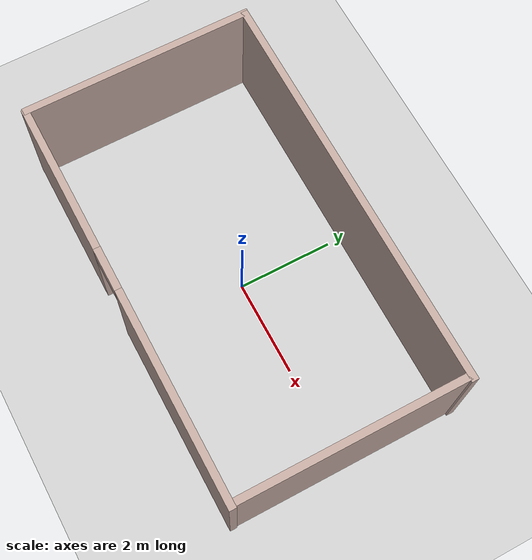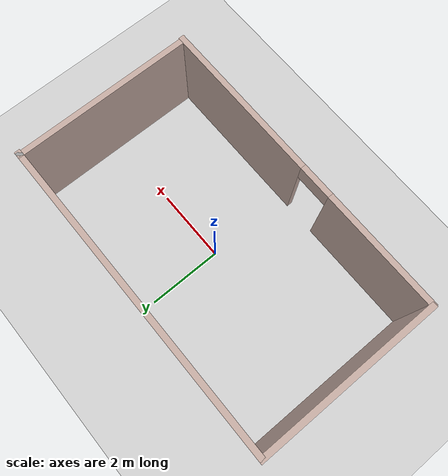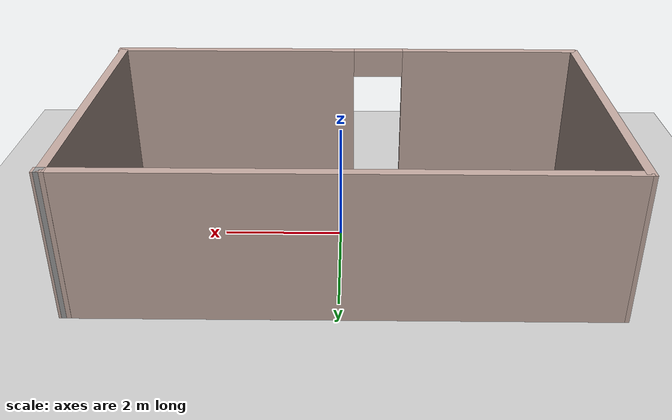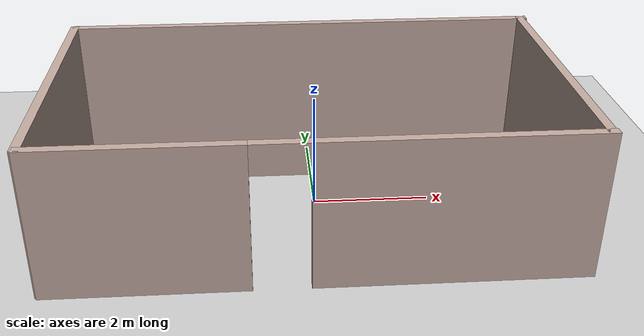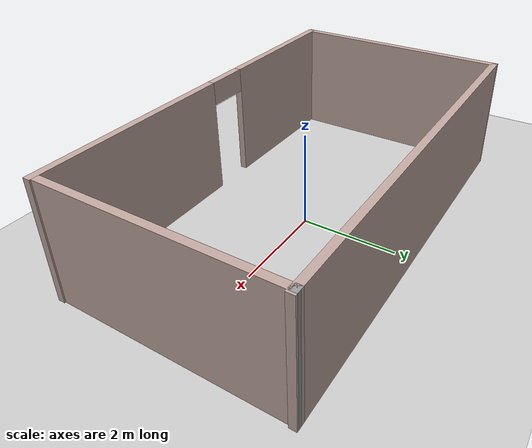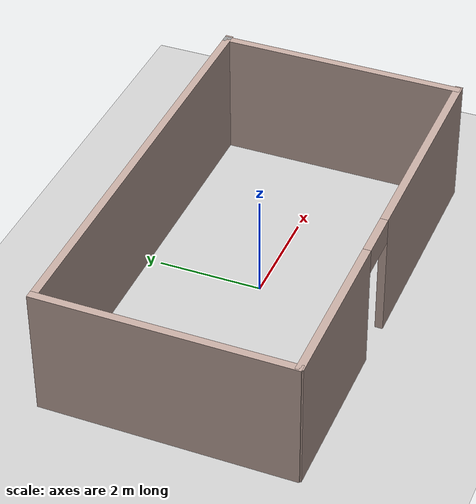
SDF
<sdf version="1.6">
 <world name="default">
  <light name="sun" type="directional">
   <pose>0 0 10 0 -0 0</pose>
   <diffuse>0.8 0.8 0.8 1</diffuse>
   <specular>0.2 0.2 0.2 1</specular>
   <attenuation>
    <range>1000</range>
    <constant>0.9</constant>
    <linear>0.01</linear>
    <quadratic>0.001</quadratic>
   </attenuation>
   <direction>-0.5 0.1 -0.9</direction>
  </light>
  <model name="ground_plane">
   <static>1</static>
   <link name="link">
    <collision name="collision">
     <geometry><plane><normal>0 0 1</normal><size>100 100</size></plane></geometry>
     <surface>
      <contact><collide_bitmask>65535</collide_bitmask></contact>
      <friction><ode><mu>100</mu><mu2>50</mu2></ode></friction>
     </surface>
    </collision>
    <visual name="visual">
     <cast_shadows>0</cast_shadows>
     <geometry><plane><normal>0 0 1</normal><size>100 100</size></plane></geometry>
     <material>
      <script><uri>file://media/materials/scripts/gazebo.material</uri><name>Gazebo/Grey</name></script>
     </material>
    </visual>
   </link>
  </model>
  <gravity>0 0 -9.8</gravity>
  <magnetic_field>6e-06 2.3e-05 -4.2e-05</magnetic_field>
  <atmosphere type="adiabatic"/>
  <physics name="default_physics" default="0" type="ode">
   <max_step_size>0.001</max_step_size>
   <real_time_factor>1</real_time_factor>
   <real_time_update_rate>1000</real_time_update_rate>
  </physics>
  <scene><ambient>0.4 0.4 0.4 1</ambient><background>0.7 0.7 0.7 1</background><shadows>1</shadows></scene>
  <audio><device>default</device></audio>
  <spherical_coordinates>
   <surface_model>EARTH_WGS84</surface_model>
   <latitude_deg>0</latitude_deg>
   <longitude_deg>0</longitude_deg>
   <elevation>0</elevation>
   <heading_deg>0</heading_deg>
  </spherical_coordinates>
  <model name="default_world">
   <pose>-0.077883 -0.036991 0 0 -0 0</pose>
   <link name="Wall_0">
    <collision name="Wall_0_Collision">
     <geometry><box><size>8.5 0.15 2.5</size></box></geometry>
     <pose>0 0 1.25 0 -0 0</pose>
    </collision>
    <visual name="Wall_0_Visual">
     <pose>0 0 1.25 0 -0 0</pose>
     <geometry><box><size>8.5 0.15 2.5</size></box></geometry>
     <material>
      <script><uri>file://media/materials/scripts/gazebo.material</uri><name>Gazebo/Grey</name></script>
      <ambient>0.760784 0.662745 0.627451 1</ambient>
     </material>
     <meta><layer>0</layer></meta>
    </visual>
    <pose>0.026108 2.36197 0 0 -0 3.14159</pose>
   </link>
   <link name="Wall_1">
    <collision name="Wall_1_Collision">
     <geometry><box><size>4.84769 0.15 2.5</size></box></geometry>
     <pose>0 0 1.25 0 -0 0</pose>
    </collision>
    <visual name="Wall_1_Visual">
     <pose>0 0 1.25 0 -0 0</pose>
     <geometry><box><size>4.84769 0.15 2.5</size></box></geometry>
     <material>
      <script><uri>file://media/materials/scripts/gazebo.material</uri><name>Gazebo/Grey</name></script>
      <ambient>0.760784 0.662745 0.627451 1</ambient>
     </material>
     <meta><layer>0</layer></meta>
    </visual>
    <pose>-4.19474 0.013127 0 0 -0 -1.57342</pose>
   </link>
   <link name="Wall_2">
    <pose>0.000538 -2.36216 0 0 -0 0</pose>
    <visual name="Wall_2_Visual_0">
     <pose>-2.64008 0 1.25 0 -0 0</pose>
     <geometry><box><size>3.21984 0.15 2.5</size></box></geometry>
     <material>
      <script><uri>file://media/materials/scripts/gazebo.material</uri><name>Gazebo/Grey</name></script>
      <ambient>0.760784 0.662745 0.627451 1</ambient>
     </material>
     <meta><layer>0</layer></meta>
    </visual>
    <collision name="Wall_2_Collision_0">
     <geometry><box><size>3.21984 0.15 2.5</size></box></geometry>
     <pose>-2.64008 0 1.25 0 -0 0</pose>
    </collision>
    <visual name="Wall_2_Visual_1">
     <pose>2.05992 0 1.25 0 -0 0</pose>
     <geometry><box><size>4.38016 0.15 2.5</size></box></geometry>
     <material>
      <script><uri>file://media/materials/scripts/gazebo.material</uri><name>Gazebo/Grey</name></script>
      <ambient>0.760784 0.662745 0.627451 1</ambient>
     </material>
     <meta><layer>0</layer></meta>
    </visual>
    <collision name="Wall_2_Collision_1">
     <geometry><box><size>4.38016 0.15 2.5</size></box></geometry>
     <pose>2.05992 0 1.25 0 -0 0</pose>
    </collision>
    <visual name="Wall_2_Visual_2">
     <pose>-0.580163 0 2.25 0 -0 0</pose>
     <geometry><box><size>0.9 0.15 0.5</size></box></geometry>
     <material>
      <script><uri>file://media/materials/scripts/gazebo.material</uri><name>Gazebo/Grey</name></script>
      <ambient>0.760784 0.662745 0.627451 1</ambient>
     </material>
     <meta><layer>0</layer></meta>
    </visual>
    <collision name="Wall_2_Collision_2">
     <geometry><box><size>0.9 0.15 0.5</size></box></geometry>
     <pose>-0.580163 0 2.25 0 -0 0</pose>
    </collision>
   </link>
   <link name="Wall_3">
    <collision name="Wall_3_Collision">
     <geometry><box><size>4.84769 0.15 2.5</size></box></geometry>
     <pose>0 0 1.25 0 -0 0</pose>
    </collision>
    <visual name="Wall_3_Visual">
     <pose>0 0 1.25 0 -0 0</pose>
     <geometry><box><size>4.84769 0.15 2.5</size></box></geometry>
     <material>
      <script><uri>file://media/materials/scripts/gazebo.material</uri><name>Gazebo/Grey</name></script>
      <ambient>0.760784 0.662745 0.627451 1</ambient>
     </material>
     <meta><layer>0</layer></meta>
    </visual>
    <pose>4.15526 0.013127 0 0 -0 1.56817</pose>
   </link>
   <link name="Wall_4">
    <collision name="Wall_4_Collision">
     <geometry><box><size>0.15 0.15 2.5</size></box></geometry>
     <pose>0 0 1.25 0 -0 0</pose>
    </collision>
    <visual name="Wall_4_Visual">
     <pose>0 0 1.25 0 -0 0</pose>
     <geometry><box><size>0.15 0.15 2.5</size></box></geometry>
     <material>
      <script><uri>file://media/materials/scripts/gazebo.material</uri><name>Gazebo/Grey</name></script>
      <ambient>1 1 1 1</ambient>
     </material>
     <meta><layer>0</layer></meta>
    </visual>
    <pose>4.16143 2.36197 0 0 -0 0</pose>
   </link>
   <static>1</static>
  </model>
 </world>
</sdf>
